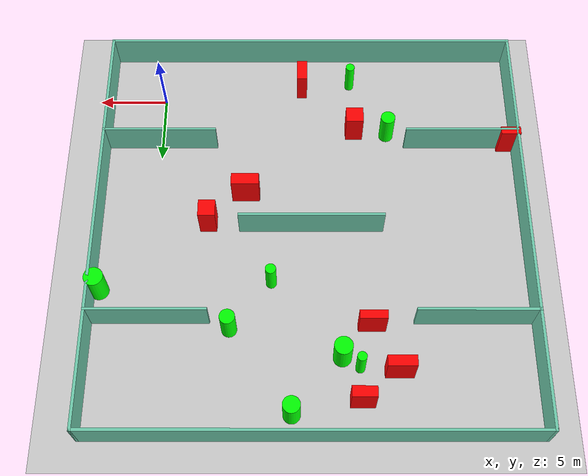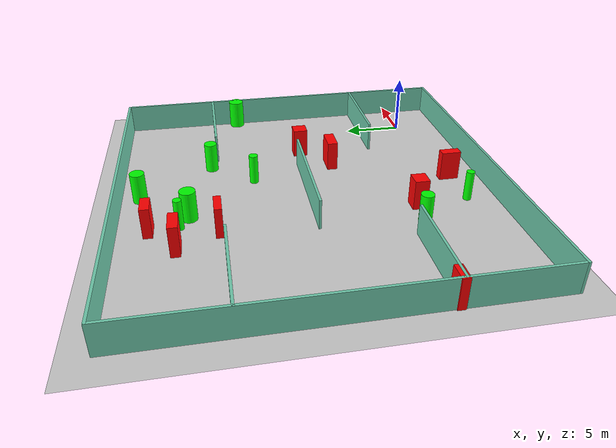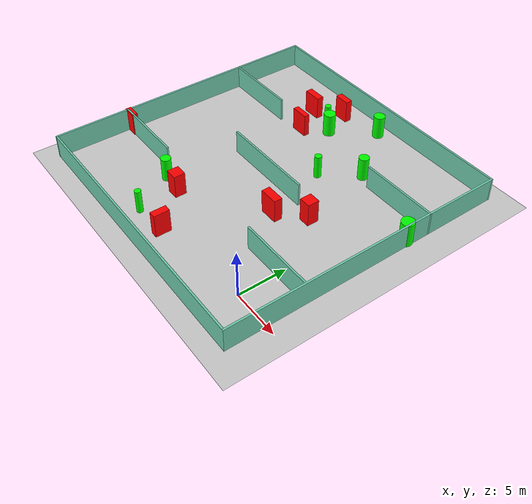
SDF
<sdf version="1.7">
 <world name="default">
  <light name="sun" type="directional">
   <pose>0 0 10 0 -0 0</pose>
   <diffuse>0.8 0.8 0.8 1</diffuse>
   <specular>0.2 0.2 0.2 1</specular>
   <attenuation>
    <range>1000</range>
    <constant>0.9</constant>
    <linear>0.01</linear>
    <quadratic>0.001</quadratic>
   </attenuation>
   <direction>-0.5 0.1 -0.9</direction>
   <spot><inner_angle>0</inner_angle><outer_angle>0</outer_angle><falloff>0</falloff></spot>
  </light>
  <model name="ground_plane">
   <static>1</static>
   <link name="link">
    <collision name="collision">
     <geometry><plane><normal>0 0 1</normal><size>100 100</size></plane></geometry>
     <surface>
      <contact><collide_bitmask>65535</collide_bitmask></contact>
      <friction><ode><mu>100</mu><mu2>50</mu2></ode></friction>
     </surface>
    </collision>
    <visual name="visual">
     <cast_shadows>0</cast_shadows>
     <geometry><plane><normal>0 0 1</normal><size>100 100</size></plane></geometry>
     <material>
      <script><uri>file://media/materials/scripts/gazebo.material</uri><name>Gazebo/Grey</name></script>
     </material>
    </visual>
   </link>
  </model>
  <gravity>0 0 -9.8</gravity>
  <magnetic_field>6e-06 2.3e-05 -4.2e-05</magnetic_field>
  <atmosphere type="adiabatic"/>
  <physics type="ode">
   <max_step_size>0.001</max_step_size>
   <real_time_factor>1</real_time_factor>
   <real_time_update_rate>1000</real_time_update_rate>
  </physics>
  <scene><ambient>0.4 0.4 0.4 1</ambient><background>0.7 0.7 0.7 1</background><shadows>1</shadows></scene>
  <spherical_coordinates>
   <surface_model>EARTH_WGS84</surface_model>
   <latitude_deg>0</latitude_deg>
   <longitude_deg>0</longitude_deg>
   <elevation>0</elevation>
   <heading_deg>0</heading_deg>
  </spherical_coordinates>
  <model name="my_base_walls">
   <link name="Wall_10">
    <collision name="Wall_10_Collision">
     <geometry><box><size>8.2 0.2 2.5</size></box></geometry>
     <pose>0 0 1.25 0 -0 0</pose>
    </collision>
    <visual name="Wall_10_Visual">
     <pose>0 0 1.25 0 -0 0</pose>
     <geometry><box><size>8.2 0.2 2.5</size></box></geometry>
     <material>
      <script><uri>file://media/materials/scripts/gazebo.material</uri><name>Gazebo/Grey</name></script>
      <ambient>0.435294 0.796078 0.67451 1</ambient>
     </material>
     <meta><layer>0</layer></meta>
    </visual>
    <pose>-11 -7 0 0 -0 0</pose>
   </link>
   <link name="Wall_12">
    <collision name="Wall_12_Collision">
     <geometry><box><size>8.2 0.2 2.5</size></box></geometry>
     <pose>0 0 1.25 0 -0 0</pose>
    </collision>
    <visual name="Wall_12_Visual">
     <pose>0 0 1.25 0 -0 0</pose>
     <geometry><box><size>8.2 0.2 2.5</size></box></geometry>
     <material>
      <script><uri>file://media/materials/scripts/gazebo.material</uri><name>Gazebo/Grey</name></script>
      <ambient>0.435294 0.796078 0.67451 1</ambient>
     </material>
     <meta><layer>0</layer></meta>
    </visual>
    <pose>-11 7 0 0 -0 0</pose>
   </link>
   <link name="Wall_14">
    <collision name="Wall_14_Collision">
     <geometry><box><size>8.2 0.2 2.5</size></box></geometry>
     <pose>0 0 1.25 0 -0 0</pose>
    </collision>
    <visual name="Wall_14_Visual">
     <pose>0 0 1.25 0 -0 0</pose>
     <geometry><box><size>8.2 0.2 2.5</size></box></geometry>
     <material>
      <script><uri>file://media/materials/scripts/gazebo.material</uri><name>Gazebo/Grey</name></script>
      <ambient>0.435294 0.796078 0.67451 1</ambient>
     </material>
     <meta><layer>0</layer></meta>
    </visual>
    <pose>11 7 0 0 -0 3.14159</pose>
   </link>
   <link name="Wall_16">
    <collision name="Wall_16_Collision">
     <geometry><box><size>10.2 0.2 2.5</size></box></geometry>
     <pose>0 0 1.25 0 -0 0</pose>
    </collision>
    <visual name="Wall_16_Visual">
     <pose>0 0 1.25 0 -0 0</pose>
     <geometry><box><size>10.2 0.2 2.5</size></box></geometry>
     <material>
      <script><uri>file://media/materials/scripts/gazebo.material</uri><name>Gazebo/Grey</name></script>
      <ambient>0.435294 0.796078 0.67451 1</ambient>
     </material>
     <meta><layer>0</layer></meta>
    </visual>
    <pose>0 0 0 0 -0 3.14159</pose>
   </link>
   <link name="Wall_2">
    <collision name="Wall_2_Collision">
     <geometry><box><size>30.2 0.2 2.5</size></box></geometry>
     <pose>0 0 1.25 0 -0 0</pose>
    </collision>
    <visual name="Wall_2_Visual">
     <pose>0 0 1.25 0 -0 0</pose>
     <geometry><box><size>30.2 0.2 2.5</size></box></geometry>
     <material>
      <script><uri>file://media/materials/scripts/gazebo.material</uri><name>Gazebo/Grey</name></script>
      <ambient>0.435294 0.796078 0.67451 1</ambient>
     </material>
     <meta><layer>0</layer></meta>
    </visual>
    <pose>0 -15 0 0 -0 3.14159</pose>
   </link>
   <link name="Wall_3">
    <collision name="Wall_3_Collision">
     <geometry><box><size>30.2 0.2 2.5</size></box></geometry>
     <pose>0 0 1.25 0 -0 0</pose>
    </collision>
    <visual name="Wall_3_Visual">
     <pose>0 0 1.25 0 -0 0</pose>
     <geometry><box><size>30.2 0.2 2.5</size></box></geometry>
     <material>
      <script><uri>file://media/materials/scripts/gazebo.material</uri><name>Gazebo/Grey</name></script>
      <ambient>0.435294 0.796078 0.67451 1</ambient>
     </material>
     <meta><layer>0</layer></meta>
    </visual>
    <pose>-15 0 0 0 -0 1.5708</pose>
   </link>
   <link name="Wall_4">
    <collision name="Wall_4_Collision">
     <geometry><box><size>30.2 0.2 2.5</size></box></geometry>
     <pose>0 0 1.25 0 -0 0</pose>
    </collision>
    <visual name="Wall_4_Visual">
     <pose>0 0 1.25 0 -0 0</pose>
     <geometry><box><size>30.2 0.2 2.5</size></box></geometry>
     <material>
      <script><uri>file://media/materials/scripts/gazebo.material</uri><name>Gazebo/Grey</name></script>
      <ambient>0.435294 0.796078 0.67451 1</ambient>
     </material>
     <meta><layer>0</layer></meta>
    </visual>
    <pose>0 15 0 0 -0 0</pose>
   </link>
   <link name="Wall_6">
    <collision name="Wall_6_Collision">
     <geometry><box><size>30.2 0.2 2.5</size></box></geometry>
     <pose>0 0 1.25 0 -0 0</pose>
    </collision>
    <visual name="Wall_6_Visual">
     <pose>0 0 1.25 0 -0 0</pose>
     <geometry><box><size>30.2 0.2 2.5</size></box></geometry>
     <material>
      <script><uri>file://media/materials/scripts/gazebo.material</uri><name>Gazebo/Grey</name></script>
      <ambient>0.435294 0.796078 0.67451 1</ambient>
     </material>
     <meta><layer>0</layer></meta>
    </visual>
    <pose>15 0 0 0 -0 1.5708</pose>
   </link>
   <link name="Wall_8">
    <collision name="Wall_8_Collision">
     <geometry><box><size>8.2 0.2 2.5</size></box></geometry>
     <pose>0 0 1.25 0 -0 0</pose>
    </collision>
    <visual name="Wall_8_Visual">
     <pose>0 0 1.25 0 -0 0</pose>
     <geometry><box><size>8.2 0.2 2.5</size></box></geometry>
     <material>
      <script><uri>file://media/materials/scripts/gazebo.material</uri><name>Gazebo/Grey</name></script>
      <ambient>0.435294 0.796078 0.67451 1</ambient>
     </material>
     <meta><layer>0</layer></meta>
    </visual>
    <pose>11 -7 0 0 -0 3.14159</pose>
   </link>
   <static>1</static>
   <pose>-11 11 0 0 -0 0</pose>
  </model>
  <model name="cylinder1">
   <static>1</static>
   <link name="link">
    <inertial>
     <mass>1</mass>
     <inertia><ixx>0.5</ixx><ixy>0</ixy><ixz>0</ixz><iyy>0.5</iyy><iyz>0</iyz><izz>1</izz></inertia>
    </inertial>
    <collision name="collision">
     <geometry><cylinder><radius>0.32158071764767726</radius><length>2.5</length></cylinder></geometry>
    </collision>
    <visual name="visual">
     <geometry><cylinder><radius>0.32158071764767726</radius><length>2.5</length></cylinder></geometry>
     <material>
      <ambient>0 1 0 1</ambient>
      <diffuse>0 1 0 1</diffuse>
      <specular>0.1 0.1 0.1 1</specular>
      <emissive>0 0 0 0</emissive>
     </material>
    </visual>
   </link>
   <pose>-14.187977343328255 21.263121885919237 1.25 0 0 0</pose>
  </model>
  <model name="cylinder2">
   <static>1</static>
   <link name="link">
    <inertial>
     <mass>1</mass>
     <inertia><ixx>0.5</ixx><ixy>0</ixy><ixz>0</ixz><iyy>0.5</iyy><iyz>0</iyz><izz>1</izz></inertia>
    </inertial>
    <collision name="collision">
     <geometry><cylinder><radius>0.5816712985033241</radius><length>2.5</length></cylinder></geometry>
    </collision>
    <visual name="visual">
     <geometry><cylinder><radius>0.5816712985033241</radius><length>2.5</length></cylinder></geometry>
     <material>
      <ambient>0 1 0 1</ambient>
      <diffuse>0 1 0 1</diffuse>
      <specular>0.1 0.1 0.1 1</specular>
      <emissive>0 0 0 0</emissive>
     </material>
    </visual>
   </link>
   <pose>-9.661824379253362 24.413383459699403 1.25 0 0 0</pose>
  </model>
  <model name="cylinder3">
   <static>1</static>
   <link name="link">
    <inertial>
     <mass>1</mass>
     <inertia><ixx>0.5</ixx><ixy>0</ixy><ixz>0</ixz><iyy>0.5</iyy><iyz>0</iyz><izz>1</izz></inertia>
    </inertial>
    <collision name="collision">
     <geometry><cylinder><radius>0.5261043400408639</radius><length>2.5</length></cylinder></geometry>
    </collision>
    <visual name="visual">
     <geometry><cylinder><radius>0.5261043400408639</radius><length>2.5</length></cylinder></geometry>
     <material>
      <ambient>0 1 0 1</ambient>
      <diffuse>0 1 0 1</diffuse>
      <specular>0.1 0.1 0.1 1</specular>
      <emissive>0 0 0 0</emissive>
     </material>
    </visual>
   </link>
   <pose>-5.43230665708071 18.551355146818988 1.25 0 0 0</pose>
  </model>
  <model name="cylinder4">
   <static>1</static>
   <link name="link">
    <inertial>
     <mass>1</mass>
     <inertia><ixx>0.5</ixx><ixy>0</ixy><ixz>0</ixz><iyy>0.5</iyy><iyz>0</iyz><izz>1</izz></inertia>
    </inertial>
    <collision name="collision">
     <geometry><cylinder><radius>0.3229444182829741</radius><length>2.5</length></cylinder></geometry>
    </collision>
    <visual name="visual">
     <geometry><cylinder><radius>0.3229444182829741</radius><length>2.5</length></cylinder></geometry>
     <material>
      <ambient>0 1 0 1</ambient>
      <diffuse>0 1 0 1</diffuse>
      <specular>0.1 0.1 0.1 1</specular>
      <emissive>0 0 0 0</emissive>
     </material>
    </visual>
   </link>
   <pose>-13.984074032991096 -1.4960695902464458 1.25 0 0 0</pose>
  </model>
  <model name="cylinder5">
   <static>1</static>
   <link name="link">
    <inertial>
     <mass>1</mass>
     <inertia><ixx>0.5</ixx><ixy>0</ixy><ixz>0</ixz><iyy>0.5</iyy><iyz>0</iyz><izz>1</izz></inertia>
    </inertial>
    <collision name="collision">
     <geometry><cylinder><radius>0.5167478286557612</radius><length>2.5</length></cylinder></geometry>
    </collision>
    <visual name="visual">
     <geometry><cylinder><radius>0.5167478286557612</radius><length>2.5</length></cylinder></geometry>
     <material>
      <ambient>0 1 0 1</ambient>
      <diffuse>0 1 0 1</diffuse>
      <specular>0.1 0.1 0.1 1</specular>
      <emissive>0 0 0 0</emissive>
     </material>
    </visual>
   </link>
   <pose>-16.628797762782764 3.0191419875742813 1.25 0 0 0</pose>
  </model>
  <model name="cylinder6">
   <static>1</static>
   <link name="link">
    <inertial>
     <mass>1</mass>
     <inertia><ixx>0.5</ixx><ixy>0</ixy><ixz>0</ixz><iyy>0.5</iyy><iyz>0</iyz><izz>1</izz></inertia>
    </inertial>
    <collision name="collision">
     <geometry><cylinder><radius>0.6260691579311328</radius><length>2.5</length></cylinder></geometry>
    </collision>
    <visual name="visual">
     <geometry><cylinder><radius>0.6260691579311328</radius><length>2.5</length></cylinder></geometry>
     <material>
      <ambient>0 1 0 1</ambient>
      <diffuse>0 1 0 1</diffuse>
      <specular>0.1 0.1 0.1 1</specular>
      <emissive>0 0 0 0</emissive>
     </material>
    </visual>
   </link>
   <pose>-13.0184508051111 20.536218004924446 1.25 0 0 0</pose>
  </model>
  <model name="cylinder7">
   <static>1</static>
   <link name="link">
    <inertial>
     <mass>1</mass>
     <inertia><ixx>0.5</ixx><ixy>0</ixy><ixz>0</ixz><iyy>0.5</iyy><iyz>0</iyz><izz>1</izz></inertia>
    </inertial>
    <collision name="collision">
     <geometry><cylinder><radius>0.6643887735893409</radius><length>2.5</length></cylinder></geometry>
    </collision>
    <visual name="visual">
     <geometry><cylinder><radius>0.6643887735893409</radius><length>2.5</length></cylinder></geometry>
     <material>
      <ambient>0 1 0 1</ambient>
      <diffuse>0 1 0 1</diffuse>
      <specular>0.1 0.1 0.1 1</specular>
      <emissive>0 0 0 0</emissive>
     </material>
    </visual>
   </link>
   <pose>3.5868026138822877 15.70109279768807 1.25 0 0 0</pose>
  </model>
  <model name="cylinder8">
   <static>1</static>
   <link name="link">
    <inertial>
     <mass>1</mass>
     <inertia><ixx>0.5</ixx><ixy>0</ixy><ixz>0</ixz><iyy>0.5</iyy><iyz>0</iyz><izz>1</izz></inertia>
    </inertial>
    <collision name="collision">
     <geometry><cylinder><radius>0.36708611819203957</radius><length>2.5</length></cylinder></geometry>
    </collision>
    <visual name="visual">
     <geometry><cylinder><radius>0.36708611819203957</radius><length>2.5</length></cylinder></geometry>
     <material>
      <ambient>0 1 0 1</ambient>
      <diffuse>0 1 0 1</diffuse>
      <specular>0.1 0.1 0.1 1</specular>
      <emissive>0 0 0 0</emissive>
     </material>
    </visual>
   </link>
   <pose>-8.232295395206943 15.12719801136268 1.25 0 0 0</pose>
  </model>
  <model name="box1">
   <static>1</static>
   <link name="link">
    <inertial>
     <mass>1</mass>
     <inertia><ixx>0.083</ixx><ixy>0</ixy><ixz>0</ixz><iyy>0.083</iyy><iyz>0</iyz><izz>0.083</izz></inertia>
    </inertial>
    <collision name="collision">
     <geometry><box><size>1.6608977596283858 0.7134068959619801 2.5</size></box></geometry>
    </collision>
    <visual name="visual">
     <geometry><box><size>1.6608977596283858 0.7134068959619801 2.5</size></box></geometry>
     <material>
      <ambient>1 0 0 1</ambient>
      <diffuse>1 0 0 1</diffuse>
      <specular>0.1 0.1 0.1 1</specular>
      <emissive>0 0 0 0</emissive>
     </material>
    </visual>
    <sensor name="my_contact" type="contact">
     <contact><collision>box_collision</collision><topic>__default_topic__</topic></contact>
    </sensor>
   </link>
   <pose>-14.284503692588384 23.555976018390872 1.25 0 0 0</pose>
  </model>
  <model name="box2">
   <static>1</static>
   <link name="link">
    <inertial>
     <mass>1</mass>
     <inertia><ixx>0.083</ixx><ixy>0</ixy><ixz>0</ixz><iyy>0.083</iyy><iyz>0</iyz><izz>0.083</izz></inertia>
    </inertial>
    <collision name="collision">
     <geometry><box><size>1.9599963001755925 0.8597002962154592 2.5</size></box></geometry>
    </collision>
    <visual name="visual">
     <geometry><box><size>1.9599963001755925 0.8597002962154592 2.5</size></box></geometry>
     <material>
      <ambient>1 0 0 1</ambient>
      <diffuse>1 0 0 1</diffuse>
      <specular>0.1 0.1 0.1 1</specular>
      <emissive>0 0 0 0</emissive>
     </material>
    </visual>
    <sensor name="my_contact" type="contact">
     <contact><collision>box_collision</collision><topic>__default_topic__</topic></contact>
    </sensor>
   </link>
   <pose>-6.321571123768084 8.163984471963076 1.25 0 0 0</pose>
  </model>
  <model name="box3">
   <static>1</static>
   <link name="link">
    <inertial>
     <mass>1</mass>
     <inertia><ixx>0.083</ixx><ixy>0</ixy><ixz>0</ixz><iyy>0.083</iyy><iyz>0</iyz><izz>0.083</izz></inertia>
    </inertial>
    <collision name="collision">
     <geometry><box><size>1.9350766492286686 0.7375594856224679 2.5</size></box></geometry>
    </collision>
    <visual name="visual">
     <geometry><box><size>1.9350766492286686 0.7375594856224679 2.5</size></box></geometry>
     <material>
      <ambient>1 0 0 1</ambient>
      <diffuse>1 0 0 1</diffuse>
      <specular>0.1 0.1 0.1 1</specular>
      <emissive>0 0 0 0</emissive>
     </material>
    </visual>
    <sensor name="my_contact" type="contact">
     <contact><collision>box_collision</collision><topic>__default_topic__</topic></contact>
    </sensor>
   </link>
   <pose>-16.763702349825987 21.526626416115498 1.25 0 0 0</pose>
  </model>
  <model name="box4">
   <static>1</static>
   <link name="link">
    <inertial>
     <mass>1</mass>
     <inertia><ixx>0.083</ixx><ixy>0</ixy><ixz>0</ixz><iyy>0.083</iyy><iyz>0</iyz><izz>0.083</izz></inertia>
    </inertial>
    <collision name="collision">
     <geometry><box><size>1.1872644383429032 1.202670588145533 2.5</size></box></geometry>
    </collision>
    <visual name="visual">
     <geometry><box><size>1.1872644383429032 1.202670588145533 2.5</size></box></geometry>
     <material>
      <ambient>1 0 0 1</ambient>
      <diffuse>1 0 0 1</diffuse>
      <specular>0.1 0.1 0.1 1</specular>
      <emissive>0 0 0 0</emissive>
     </material>
    </visual>
    <sensor name="my_contact" type="contact">
     <contact><collision>box_collision</collision><topic>__default_topic__</topic></contact>
    </sensor>
   </link>
   <pose>-3.721766825583998 10.487721161132587 1.25 0 0 0</pose>
  </model>
  <model name="box5">
   <static>1</static>
   <link name="link">
    <inertial>
     <mass>1</mass>
     <inertia><ixx>0.083</ixx><ixy>0</ixy><ixz>0</ixz><iyy>0.083</iyy><iyz>0</iyz><izz>0.083</izz></inertia>
    </inertial>
    <collision name="collision">
     <geometry><box><size>1.8646775936986275 0.5811763376667569 2.5</size></box></geometry>
    </collision>
    <visual name="visual">
     <geometry><box><size>1.8646775936986275 0.5811763376667569 2.5</size></box></geometry>
     <material>
      <ambient>1 0 0 1</ambient>
      <diffuse>1 0 0 1</diffuse>
      <specular>0.1 0.1 0.1 1</specular>
      <emissive>0 0 0 0</emissive>
     </material>
    </visual>
    <sensor name="my_contact" type="contact">
     <contact><collision>box_collision</collision><topic>__default_topic__</topic></contact>
    </sensor>
   </link>
   <pose>-15.042716108865307 18.38210310598247 1.25 0 0 0</pose>
  </model>
  <model name="box6">
   <static>1</static>
   <link name="link">
    <inertial>
     <mass>1</mass>
     <inertia><ixx>0.083</ixx><ixy>0</ixy><ixz>0</ixz><iyy>0.083</iyy><iyz>0</iyz><izz>0.083</izz></inertia>
    </inertial>
    <collision name="collision">
     <geometry><box><size>1.41302052026247 0.5953111742535079 2.5</size></box></geometry>
    </collision>
    <visual name="visual">
     <geometry><box><size>1.41302052026247 0.5953111742535079 2.5</size></box></geometry>
     <material>
      <ambient>1 0 0 1</ambient>
      <diffuse>1 0 0 1</diffuse>
      <specular>0.1 0.1 0.1 1</specular>
      <emissive>0 0 0 0</emissive>
     </material>
    </visual>
    <sensor name="my_contact" type="contact">
     <contact><collision>box_collision</collision><topic>__default_topic__</topic></contact>
    </sensor>
   </link>
   <pose>-25.488942310497347 4.10869112922426 1.25 0 0 0</pose>
  </model>
  <model name="box7">
   <static>1</static>
   <link name="link">
    <inertial>
     <mass>1</mass>
     <inertia><ixx>0.083</ixx><ixy>0</ixy><ixz>0</ixz><iyy>0.083</iyy><iyz>0</iyz><izz>0.083</izz></inertia>
    </inertial>
    <collision name="collision">
     <geometry><box><size>0.7331284045617797 1.621998932850762 2.5</size></box></geometry>
    </collision>
    <visual name="visual">
     <geometry><box><size>0.7331284045617797 1.621998932850762 2.5</size></box></geometry>
     <material>
      <ambient>1 0 0 1</ambient>
      <diffuse>1 0 0 1</diffuse>
      <specular>0.1 0.1 0.1 1</specular>
      <emissive>0 0 0 0</emissive>
     </material>
    </visual>
    <sensor name="my_contact" type="contact">
     <contact><collision>box_collision</collision><topic>__default_topic__</topic></contact>
    </sensor>
   </link>
   <pose>-10.367790016845913 -1.2513285130546197 1.25 0 0 0</pose>
  </model>
  <model name="box8">
   <static>1</static>
   <link name="link">
    <inertial>
     <mass>1</mass>
     <inertia><ixx>0.083</ixx><ixy>0</ixy><ixz>0</ixz><iyy>0.083</iyy><iyz>0</iyz><izz>0.083</izz></inertia>
    </inertial>
    <collision name="collision">
     <geometry><box><size>1.2501861937545762 1.1786360565547827 2.5</size></box></geometry>
    </collision>
    <visual name="visual">
     <geometry><box><size>1.2501861937545762 1.1786360565547827 2.5</size></box></geometry>
     <material>
      <ambient>1 0 0 1</ambient>
      <diffuse>1 0 0 1</diffuse>
      <specular>0.1 0.1 0.1 1</specular>
      <emissive>0 0 0 0</emissive>
     </material>
    </visual>
    <sensor name="my_contact" type="contact">
     <contact><collision>box_collision</collision><topic>__default_topic__</topic></contact>
    </sensor>
   </link>
   <pose>-14.213325530842315 2.739654695873857 1.25 0 0 0</pose>
  </model>
 </world>
</sdf>
